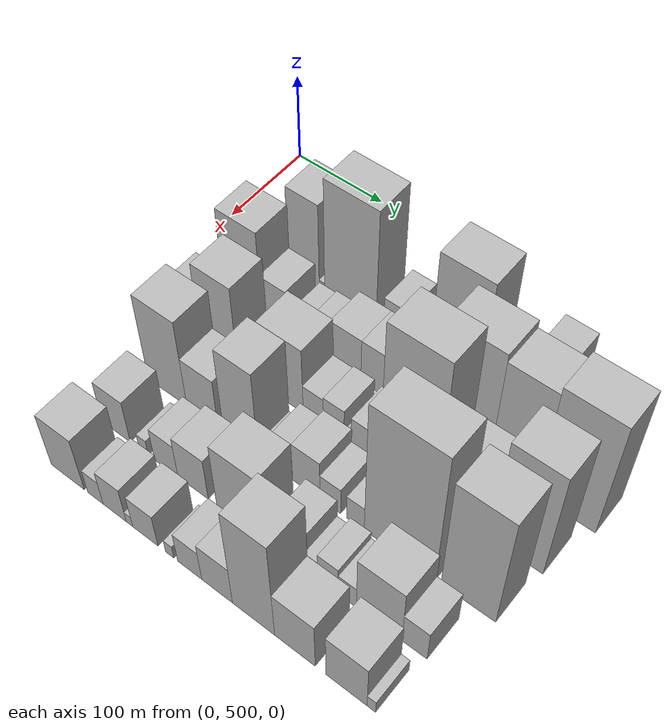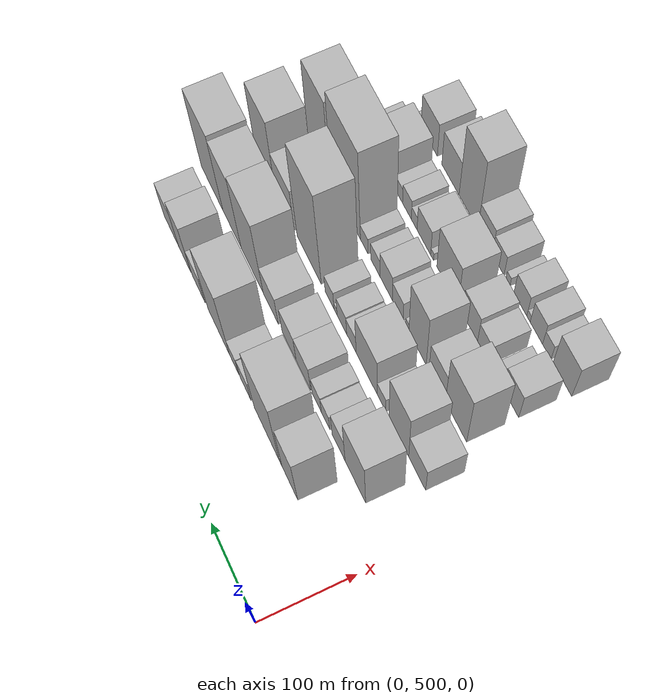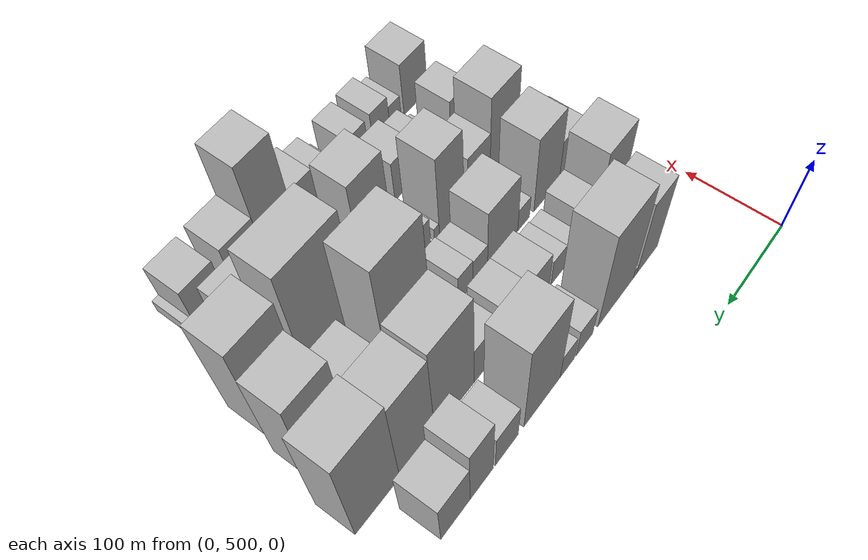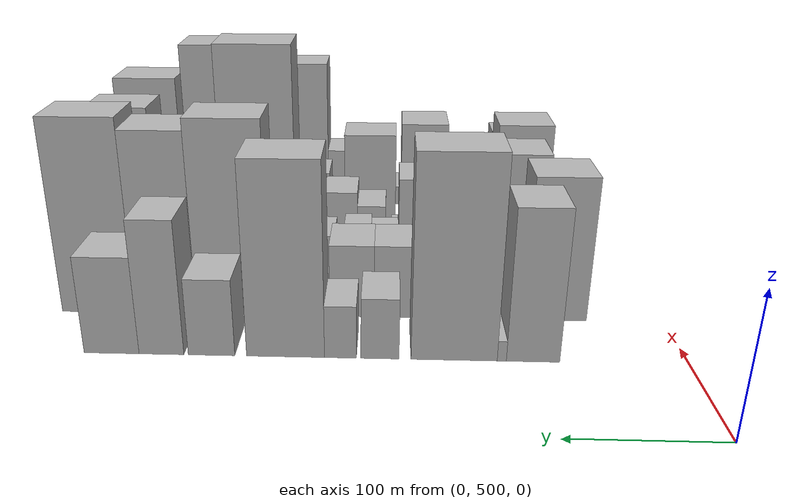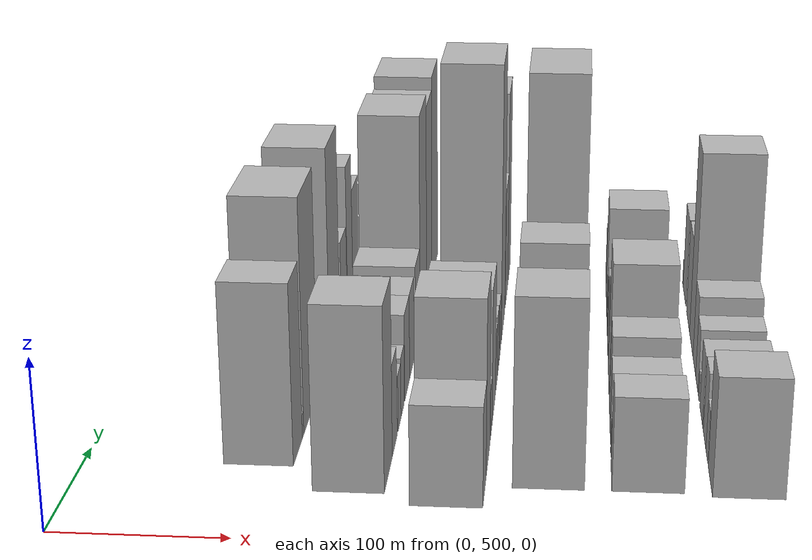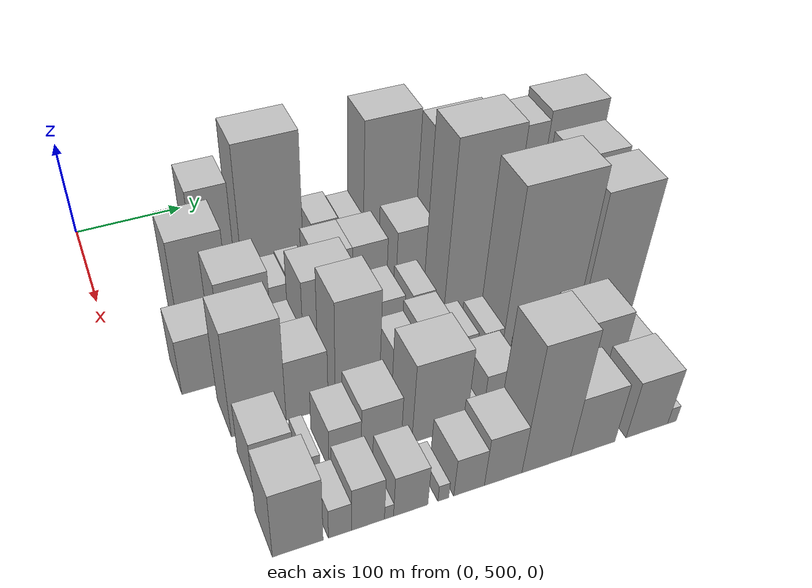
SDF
<sdf version="1.6">
 <world name="default">
  <model name="building_39">
   <static>1</static>
   <pose>100.0000 603.3156 0 0.000000 0.000000 0.000000</pose>
   <link name="link">
    <pose>0 0 55.50 0 0 0</pose>
    <collision name="collision"><geometry><box><size>40.0000 35.3948 111.0000</size></box></geometry></collision>
    <visual name="visual">
     <cast_shadows>0</cast_shadows>
     <geometry><box><size>40.0000 35.3948 111.0000</size></box></geometry>
     <material>
      <script>
       <uri>model://HANNAS_wall/materials/scripts</uri>
       <uri>model://HANNAS_wall/materials/textures</uri>
       <name>vrc/HANNAS_wall</name>
      </script>
     </material>
    </visual>
   </link>
  </model>
  <model name="building_40">
   <static>1</static>
   <pose>100.0000 624.0518 0 0.000000 0.000000 0.000000</pose>
   <link name="link">
    <pose>0 0 7.50 0 0 0</pose>
    <collision name="collision"><geometry><box><size>40.0000 6.0776 15.0000</size></box></geometry></collision>
    <visual name="visual">
     <cast_shadows>0</cast_shadows>
     <geometry><box><size>40.0000 6.0776 15.0000</size></box></geometry>
     <material>
      <script>
       <uri>model://HANNAS_wall/materials/scripts</uri>
       <uri>model://HANNAS_wall/materials/textures</uri>
       <name>vrc/HANNAS_wall</name>
      </script>
     </material>
    </visual>
   </link>
  </model>
  <model name="building_41">
   <static>1</static>
   <pose>100.0000 655.8652 0 0.000000 0.000000 0.000000</pose>
   <link name="link">
    <pose>0 0 73.50 0 0 0</pose>
    <collision name="collision"><geometry><box><size>40.0000 57.5492 147.0000</size></box></geometry></collision>
    <visual name="visual">
     <cast_shadows>0</cast_shadows>
     <geometry><box><size>40.0000 57.5492 147.0000</size></box></geometry>
     <material>
      <script>
       <uri>model://HANNAS_wall/materials/scripts</uri>
       <uri>model://HANNAS_wall/materials/textures</uri>
       <name>vrc/HANNAS_wall</name>
      </script>
     </material>
    </visual>
   </link>
  </model>
  <model name="building_42">
   <static>1</static>
   <pose>100.0000 705.4390 0 0.000000 0.000000 0.000000</pose>
   <link name="link">
    <pose>0 0 22.50 0 0 0</pose>
    <collision name="collision"><geometry><box><size>40.0000 25.5985 45.0000</size></box></geometry></collision>
    <visual name="visual">
     <cast_shadows>0</cast_shadows>
     <geometry><box><size>40.0000 25.5985 45.0000</size></box></geometry>
     <material>
      <script>
       <uri>model://HANNAS_wall/materials/scripts</uri>
       <uri>model://HANNAS_wall/materials/textures</uri>
       <name>vrc/HANNAS_wall</name>
      </script>
     </material>
    </visual>
   </link>
  </model>
  <model name="building_43">
   <static>1</static>
   <pose>100.0000 731.9923 0 0.000000 0.000000 0.000000</pose>
   <link name="link">
    <pose>0 0 19.50 0 0 0</pose>
    <collision name="collision"><geometry><box><size>40.0000 21.5082 39.0000</size></box></geometry></collision>
    <visual name="visual">
     <cast_shadows>0</cast_shadows>
     <geometry><box><size>40.0000 21.5082 39.0000</size></box></geometry>
     <material>
      <script>
       <uri>model://HANNAS_wall/materials/scripts</uri>
       <uri>model://HANNAS_wall/materials/textures</uri>
       <name>vrc/HANNAS_wall</name>
      </script>
     </material>
    </visual>
   </link>
  </model>
  <model name="building_44">
   <static>1</static>
   <pose>100.0000 769.0961 0 0.000000 0.000000 0.000000</pose>
   <link name="link">
    <pose>0 0 70.50 0 0 0</pose>
    <collision name="collision"><geometry><box><size>40.0000 52.6994 141.0000</size></box></geometry></collision>
    <visual name="visual">
     <cast_shadows>0</cast_shadows>
     <geometry><box><size>40.0000 52.6994 141.0000</size></box></geometry>
     <material>
      <script>
       <uri>model://HANNAS_wall/materials/scripts</uri>
       <uri>model://HANNAS_wall/materials/textures</uri>
       <name>vrc/HANNAS_wall</name>
      </script>
     </material>
    </visual>
   </link>
  </model>
  <model name="building_45">
   <static>1</static>
   <pose>100.0000 819.2870 0 0.000000 0.000000 0.000000</pose>
   <link name="link">
    <pose>0 0 28.50 0 0 0</pose>
    <collision name="collision"><geometry><box><size>40.0000 31.6823 57.0000</size></box></geometry></collision>
    <visual name="visual">
     <cast_shadows>0</cast_shadows>
     <geometry><box><size>40.0000 31.6823 57.0000</size></box></geometry>
     <material>
      <script>
       <uri>model://HANNAS_wall/materials/scripts</uri>
       <uri>model://HANNAS_wall/materials/textures</uri>
       <name>vrc/HANNAS_wall</name>
      </script>
     </material>
    </visual>
   </link>
  </model>
  <model name="building_46">
   <static>1</static>
   <pose>100.0000 853.4413 0 0.000000 0.000000 0.000000</pose>
   <link name="link">
    <pose>0 0 49.50 0 0 0</pose>
    <collision name="collision"><geometry><box><size>40.0000 30.6263 99.0000</size></box></geometry></collision>
    <visual name="visual">
     <cast_shadows>0</cast_shadows>
     <geometry><box><size>40.0000 30.6263 99.0000</size></box></geometry>
     <material>
      <script>
       <uri>model://HANNAS_wall/materials/scripts</uri>
       <uri>model://HANNAS_wall/materials/textures</uri>
       <name>vrc/HANNAS_wall</name>
      </script>
     </material>
    </visual>
   </link>
  </model>
  <model name="building_47">
   <static>1</static>
   <pose>100.0000 887.5912 0 0.000000 0.000000 0.000000</pose>
   <link name="link">
    <pose>0 0 36.00 0 0 0</pose>
    <collision name="collision"><geometry><box><size>40.0000 37.6736 72.0000</size></box></geometry></collision>
    <visual name="visual">
     <cast_shadows>0</cast_shadows>
     <geometry><box><size>40.0000 37.6736 72.0000</size></box></geometry>
     <material>
      <script>
       <uri>model://HANNAS_wall/materials/scripts</uri>
       <uri>model://HANNAS_wall/materials/textures</uri>
       <name>vrc/HANNAS_wall</name>
      </script>
     </material>
    </visual>
   </link>
  </model>
  <model name="building_90">
   <static>1</static>
   <pose>155.0000 578.2780 0 0.000000 0.000000 0.000000</pose>
   <link name="link">
    <pose>0 0 55.50 0 0 0</pose>
    <collision name="collision"><geometry><box><size>40.0000 44.3468 111.0000</size></box></geometry></collision>
    <visual name="visual">
     <cast_shadows>0</cast_shadows>
     <geometry><box><size>40.0000 44.3468 111.0000</size></box></geometry>
     <material>
      <script>
       <uri>model://HANNAS_wall/materials/scripts</uri>
       <uri>model://HANNAS_wall/materials/textures</uri>
       <name>vrc/HANNAS_wall</name>
      </script>
     </material>
    </visual>
   </link>
  </model>
  <model name="building_91">
   <static>1</static>
   <pose>155.0000 614.8293 0 0.000000 0.000000 0.000000</pose>
   <link name="link">
    <pose>0 0 28.50 0 0 0</pose>
    <collision name="collision"><geometry><box><size>40.0000 28.7557 57.0000</size></box></geometry></collision>
    <visual name="visual">
     <cast_shadows>0</cast_shadows>
     <geometry><box><size>40.0000 28.7557 57.0000</size></box></geometry>
     <material>
      <script>
       <uri>model://HANNAS_wall/materials/scripts</uri>
       <uri>model://HANNAS_wall/materials/textures</uri>
       <name>vrc/HANNAS_wall</name>
      </script>
     </material>
    </visual>
   </link>
  </model>
  <model name="building_92">
   <static>1</static>
   <pose>155.0000 643.6632 0 0.000000 0.000000 0.000000</pose>
   <link name="link">
    <pose>0 0 18.00 0 0 0</pose>
    <collision name="collision"><geometry><box><size>40.0000 18.9121 36.0000</size></box></geometry></collision>
    <visual name="visual">
     <cast_shadows>0</cast_shadows>
     <geometry><box><size>40.0000 18.9121 36.0000</size></box></geometry>
     <material>
      <script>
       <uri>model://HANNAS_wall/materials/scripts</uri>
       <uri>model://HANNAS_wall/materials/textures</uri>
       <name>vrc/HANNAS_wall</name>
      </script>
     </material>
    </visual>
   </link>
  </model>
  <model name="building_93">
   <static>1</static>
   <pose>155.0000 663.6988 0 0.000000 0.000000 0.000000</pose>
   <link name="link">
    <pose>0 0 19.50 0 0 0</pose>
    <collision name="collision"><geometry><box><size>40.0000 21.1589 39.0000</size></box></geometry></collision>
    <visual name="visual">
     <cast_shadows>0</cast_shadows>
     <geometry><box><size>40.0000 21.1589 39.0000</size></box></geometry>
     <material>
      <script>
       <uri>model://HANNAS_wall/materials/scripts</uri>
       <uri>model://HANNAS_wall/materials/textures</uri>
       <name>vrc/HANNAS_wall</name>
      </script>
     </material>
    </visual>
   </link>
  </model>
  <model name="building_94">
   <static>1</static>
   <pose>155.0000 693.8925 0 0.000000 0.000000 0.000000</pose>
   <link name="link">
    <pose>0 0 28.50 0 0 0</pose>
    <collision name="collision"><geometry><box><size>40.0000 33.2284 57.0000</size></box></geometry></collision>
    <visual name="visual">
     <cast_shadows>0</cast_shadows>
     <geometry><box><size>40.0000 33.2284 57.0000</size></box></geometry>
     <material>
      <script>
       <uri>model://HANNAS_wall/materials/scripts</uri>
       <uri>model://HANNAS_wall/materials/textures</uri>
       <name>vrc/HANNAS_wall</name>
      </script>
     </material>
    </visual>
   </link>
  </model>
  <model name="building_95">
   <static>1</static>
   <pose>155.0000 726.8005 0 0.000000 0.000000 0.000000</pose>
   <link name="link">
    <pose>0 0 28.50 0 0 0</pose>
    <collision name="collision"><geometry><box><size>40.0000 32.5878 57.0000</size></box></geometry></collision>
    <visual name="visual">
     <cast_shadows>0</cast_shadows>
     <geometry><box><size>40.0000 32.5878 57.0000</size></box></geometry>
     <material>
      <script>
       <uri>model://HANNAS_wall/materials/scripts</uri>
       <uri>model://HANNAS_wall/materials/textures</uri>
       <name>vrc/HANNAS_wall</name>
      </script>
     </material>
    </visual>
   </link>
  </model>
  <model name="building_96">
   <static>1</static>
   <pose>155.0000 770.0083 0 0.000000 0.000000 0.000000</pose>
   <link name="link">
    <pose>0 0 30.00 0 0 0</pose>
    <collision name="collision"><geometry><box><size>40.0000 35.8278 60.0000</size></box></geometry></collision>
    <visual name="visual">
     <cast_shadows>0</cast_shadows>
     <geometry><box><size>40.0000 35.8278 60.0000</size></box></geometry>
     <material>
      <script>
       <uri>model://HANNAS_wall/materials/scripts</uri>
       <uri>model://HANNAS_wall/materials/textures</uri>
       <name>vrc/HANNAS_wall</name>
      </script>
     </material>
    </visual>
   </link>
  </model>
  <model name="building_97">
   <static>1</static>
   <pose>155.0000 814.7654 0 0.000000 0.000000 0.000000</pose>
   <link name="link">
    <pose>0 0 75.00 0 0 0</pose>
    <collision name="collision"><geometry><box><size>40.0000 53.6863 150.0000</size></box></geometry></collision>
    <visual name="visual">
     <cast_shadows>0</cast_shadows>
     <geometry><box><size>40.0000 53.6863 150.0000</size></box></geometry>
     <material>
      <script>
       <uri>model://HANNAS_wall/materials/scripts</uri>
       <uri>model://HANNAS_wall/materials/textures</uri>
       <name>vrc/HANNAS_wall</name>
      </script>
     </material>
    </visual>
   </link>
  </model>
  <model name="building_98">
   <static>1</static>
   <pose>155.0000 864.3581 0 0.000000 0.000000 0.000000</pose>
   <link name="link">
    <pose>0 0 70.50 0 0 0</pose>
    <collision name="collision"><geometry><box><size>40.0000 45.4991 141.0000</size></box></geometry></collision>
    <visual name="visual">
     <cast_shadows>0</cast_shadows>
     <geometry><box><size>40.0000 45.4991 141.0000</size></box></geometry>
     <material>
      <script>
       <uri>model://HANNAS_wall/materials/scripts</uri>
       <uri>model://HANNAS_wall/materials/textures</uri>
       <name>vrc/HANNAS_wall</name>
      </script>
     </material>
    </visual>
   </link>
  </model>
  <model name="building_99">
   <static>1</static>
   <pose>155.0000 914.5287 0 0.000000 0.000000 0.000000</pose>
   <link name="link">
    <pose>0 0 75.00 0 0 0</pose>
    <collision name="collision"><geometry><box><size>40.0000 54.8422 150.0000</size></box></geometry></collision>
    <visual name="visual">
     <cast_shadows>0</cast_shadows>
     <geometry><box><size>40.0000 54.8422 150.0000</size></box></geometry>
     <material>
      <script>
       <uri>model://HANNAS_wall/materials/scripts</uri>
       <uri>model://HANNAS_wall/materials/textures</uri>
       <name>vrc/HANNAS_wall</name>
      </script>
     </material>
    </visual>
   </link>
  </model>
  <model name="building_142">
   <static>1</static>
   <pose>210.0000 560.8203 0 0.000000 0.000000 0.000000</pose>
   <link name="link">
    <pose>0 0 30.00 0 0 0</pose>
    <collision name="collision"><geometry><box><size>40.0000 35.3594 60.0000</size></box></geometry></collision>
    <visual name="visual">
     <cast_shadows>0</cast_shadows>
     <geometry><box><size>40.0000 35.3594 60.0000</size></box></geometry>
     <material>
      <script>
       <uri>model://HANNAS_wall/materials/scripts</uri>
       <uri>model://HANNAS_wall/materials/textures</uri>
       <name>vrc/HANNAS_wall</name>
      </script>
     </material>
    </visual>
   </link>
  </model>
  <model name="building_143">
   <static>1</static>
   <pose>210.0000 599.4552 0 0.000000 0.000000 0.000000</pose>
   <link name="link">
    <pose>0 0 54.00 0 0 0</pose>
    <collision name="collision"><geometry><box><size>40.0000 41.9104 108.0000</size></box></geometry></collision>
    <visual name="visual">
     <cast_shadows>0</cast_shadows>
     <geometry><box><size>40.0000 41.9104 108.0000</size></box></geometry>
     <material>
      <script>
       <uri>model://HANNAS_wall/materials/scripts</uri>
       <uri>model://HANNAS_wall/materials/textures</uri>
       <name>vrc/HANNAS_wall</name>
      </script>
     </material>
    </visual>
   </link>
  </model>
  <model name="building_144">
   <static>1</static>
   <pose>210.0000 636.7202 0 0.000000 0.000000 0.000000</pose>
   <link name="link">
    <pose>0 0 16.50 0 0 0</pose>
    <collision name="collision"><geometry><box><size>40.0000 18.6197 33.0000</size></box></geometry></collision>
    <visual name="visual">
     <cast_shadows>0</cast_shadows>
     <geometry><box><size>40.0000 18.6197 33.0000</size></box></geometry>
     <material>
      <script>
       <uri>model://HANNAS_wall/materials/scripts</uri>
       <uri>model://HANNAS_wall/materials/textures</uri>
       <name>vrc/HANNAS_wall</name>
      </script>
     </material>
    </visual>
   </link>
  </model>
  <model name="building_145">
   <static>1</static>
   <pose>210.0000 669.3853 0 0.000000 0.000000 0.000000</pose>
   <link name="link">
    <pose>0 0 43.50 0 0 0</pose>
    <collision name="collision"><geometry><box><size>40.0000 46.7106 87.0000</size></box></geometry></collision>
    <visual name="visual">
     <cast_shadows>0</cast_shadows>
     <geometry><box><size>40.0000 46.7106 87.0000</size></box></geometry>
     <material>
      <script>
       <uri>model://HANNAS_wall/materials/scripts</uri>
       <uri>model://HANNAS_wall/materials/textures</uri>
       <name>vrc/HANNAS_wall</name>
      </script>
     </material>
    </visual>
   </link>
  </model>
  <model name="building_146">
   <static>1</static>
   <pose>210.0000 703.4894 0 0.000000 0.000000 0.000000</pose>
   <link name="link">
    <pose>0 0 19.50 0 0 0</pose>
    <collision name="collision"><geometry><box><size>40.0000 21.4976 39.0000</size></box></geometry></collision>
    <visual name="visual">
     <cast_shadows>0</cast_shadows>
     <geometry><box><size>40.0000 21.4976 39.0000</size></box></geometry>
     <material>
      <script>
       <uri>model://HANNAS_wall/materials/scripts</uri>
       <uri>model://HANNAS_wall/materials/textures</uri>
       <name>vrc/HANNAS_wall</name>
      </script>
     </material>
    </visual>
   </link>
  </model>
  <model name="building_147">
   <static>1</static>
   <pose>210.0000 725.0303 0 0.000000 0.000000 0.000000</pose>
   <link name="link">
    <pose>0 0 21.00 0 0 0</pose>
    <collision name="collision"><geometry><box><size>40.0000 21.5843 42.0000</size></box></geometry></collision>
    <visual name="visual">
     <cast_shadows>0</cast_shadows>
     <geometry><box><size>40.0000 21.5843 42.0000</size></box></geometry>
     <material>
      <script>
       <uri>model://HANNAS_wall/materials/scripts</uri>
       <uri>model://HANNAS_wall/materials/textures</uri>
       <name>vrc/HANNAS_wall</name>
      </script>
     </material>
    </visual>
   </link>
  </model>
  <model name="building_148">
   <static>1</static>
   <pose>210.0000 739.3922 0 0.000000 0.000000 0.000000</pose>
   <link name="link">
    <pose>0 0 7.50 0 0 0</pose>
    <collision name="collision"><geometry><box><size>40.0000 7.1395 15.0000</size></box></geometry></collision>
    <visual name="visual">
     <cast_shadows>0</cast_shadows>
     <geometry><box><size>40.0000 7.1395 15.0000</size></box></geometry>
     <material>
      <script>
       <uri>model://HANNAS_wall/materials/scripts</uri>
       <uri>model://HANNAS_wall/materials/textures</uri>
       <name>vrc/HANNAS_wall</name>
      </script>
     </material>
    </visual>
   </link>
  </model>
  <model name="building_149">
   <static>1</static>
   <pose>210.0000 753.1789 0 0.000000 0.000000 0.000000</pose>
   <link name="link">
    <pose>0 0 19.50 0 0 0</pose>
    <collision name="collision"><geometry><box><size>40.0000 20.4338 39.0000</size></box></geometry></collision>
    <visual name="visual">
     <cast_shadows>0</cast_shadows>
     <geometry><box><size>40.0000 20.4338 39.0000</size></box></geometry>
     <material>
      <script>
       <uri>model://HANNAS_wall/materials/scripts</uri>
       <uri>model://HANNAS_wall/materials/textures</uri>
       <name>vrc/HANNAS_wall</name>
      </script>
     </material>
    </visual>
   </link>
  </model>
  <model name="building_150">
   <static>1</static>
   <pose>210.0000 800.8912 0 0.000000 0.000000 0.000000</pose>
   <link name="link">
    <pose>0 0 94.50 0 0 0</pose>
    <collision name="collision"><geometry><box><size>40.0000 56.9908 189.0000</size></box></geometry></collision>
    <visual name="visual">
     <cast_shadows>0</cast_shadows>
     <geometry><box><size>40.0000 56.9908 189.0000</size></box></geometry>
     <material>
      <script>
       <uri>model://HANNAS_wall/materials/scripts</uri>
       <uri>model://HANNAS_wall/materials/textures</uri>
       <name>vrc/HANNAS_wall</name>
      </script>
     </material>
    </visual>
   </link>
  </model>
  <model name="building_151">
   <static>1</static>
   <pose>210.0000 858.9733 0 0.000000 0.000000 0.000000</pose>
   <link name="link">
    <pose>0 0 42.00 0 0 0</pose>
    <collision name="collision"><geometry><box><size>40.0000 45.1735 84.0000</size></box></geometry></collision>
    <visual name="visual">
     <cast_shadows>0</cast_shadows>
     <geometry><box><size>40.0000 45.1735 84.0000</size></box></geometry>
     <material>
      <script>
       <uri>model://HANNAS_wall/materials/scripts</uri>
       <uri>model://HANNAS_wall/materials/textures</uri>
       <name>vrc/HANNAS_wall</name>
      </script>
     </material>
    </visual>
   </link>
  </model>
  <model name="building_152">
   <static>1</static>
   <pose>210.0000 905.3341 0 0.000000 0.000000 0.000000</pose>
   <link name="link">
    <pose>0 0 70.50 0 0 0</pose>
    <collision name="collision"><geometry><box><size>40.0000 47.5481 141.0000</size></box></geometry></collision>
    <visual name="visual">
     <cast_shadows>0</cast_shadows>
     <geometry><box><size>40.0000 47.5481 141.0000</size></box></geometry>
     <material>
      <script>
       <uri>model://HANNAS_wall/materials/scripts</uri>
       <uri>model://HANNAS_wall/materials/textures</uri>
       <name>vrc/HANNAS_wall</name>
      </script>
     </material>
    </visual>
   </link>
  </model>
  <model name="building_195">
   <static>1</static>
   <pose>265.0000 590.0858 0 0.000000 0.000000 0.000000</pose>
   <link name="link">
    <pose>0 0 57.00 0 0 0</pose>
    <collision name="collision"><geometry><box><size>40.0000 44.2504 114.0000</size></box></geometry></collision>
    <visual name="visual">
     <cast_shadows>0</cast_shadows>
     <geometry><box><size>40.0000 44.2504 114.0000</size></box></geometry>
     <material>
      <script>
       <uri>model://HANNAS_wall/materials/scripts</uri>
       <uri>model://HANNAS_wall/materials/textures</uri>
       <name>vrc/HANNAS_wall</name>
      </script>
     </material>
    </visual>
   </link>
  </model>
  <model name="building_196">
   <static>1</static>
   <pose>265.0000 629.6001 0 0.000000 0.000000 0.000000</pose>
   <link name="link">
    <pose>0 0 33.00 0 0 0</pose>
    <collision name="collision"><geometry><box><size>40.0000 34.7782 66.0000</size></box></geometry></collision>
    <visual name="visual">
     <cast_shadows>0</cast_shadows>
     <geometry><box><size>40.0000 34.7782 66.0000</size></box></geometry>
     <material>
      <script>
       <uri>model://HANNAS_wall/materials/scripts</uri>
       <uri>model://HANNAS_wall/materials/textures</uri>
       <name>vrc/HANNAS_wall</name>
      </script>
     </material>
    </visual>
   </link>
  </model>
  <model name="building_197">
   <static>1</static>
   <pose>265.0000 671.7326 0 0.000000 0.000000 0.000000</pose>
   <link name="link">
    <pose>0 0 57.00 0 0 0</pose>
    <collision name="collision"><geometry><box><size>40.0000 37.4867 114.0000</size></box></geometry></collision>
    <visual name="visual">
     <cast_shadows>0</cast_shadows>
     <geometry><box><size>40.0000 37.4867 114.0000</size></box></geometry>
     <material>
      <script>
       <uri>model://HANNAS_wall/materials/scripts</uri>
       <uri>model://HANNAS_wall/materials/textures</uri>
       <name>vrc/HANNAS_wall</name>
      </script>
     </material>
    </visual>
   </link>
  </model>
  <model name="building_198">
   <static>1</static>
   <pose>265.0000 694.2778 0 0.000000 0.000000 0.000000</pose>
   <link name="link">
    <pose>0 0 9.00 0 0 0</pose>
    <collision name="collision"><geometry><box><size>40.0000 7.6038 18.0000</size></box></geometry></collision>
    <visual name="visual">
     <cast_shadows>0</cast_shadows>
     <geometry><box><size>40.0000 7.6038 18.0000</size></box></geometry>
     <material>
      <script>
       <uri>model://HANNAS_wall/materials/scripts</uri>
       <uri>model://HANNAS_wall/materials/textures</uri>
       <name>vrc/HANNAS_wall</name>
      </script>
     </material>
    </visual>
   </link>
  </model>
  <model name="building_199">
   <static>1</static>
   <pose>265.0000 714.9872 0 0.000000 0.000000 0.000000</pose>
   <link name="link">
    <pose>0 0 21.00 0 0 0</pose>
    <collision name="collision"><geometry><box><size>40.0000 23.8150 42.0000</size></box></geometry></collision>
    <visual name="visual">
     <cast_shadows>0</cast_shadows>
     <geometry><box><size>40.0000 23.8150 42.0000</size></box></geometry>
     <material>
      <script>
       <uri>model://HANNAS_wall/materials/scripts</uri>
       <uri>model://HANNAS_wall/materials/textures</uri>
       <name>vrc/HANNAS_wall</name>
      </script>
     </material>
    </visual>
   </link>
  </model>
  <model name="building_200">
   <static>1</static>
   <pose>265.0000 741.0204 0 0.000000 0.000000 0.000000</pose>
   <link name="link">
    <pose>0 0 27.00 0 0 0</pose>
    <collision name="collision"><geometry><box><size>40.0000 28.2514 54.0000</size></box></geometry></collision>
    <visual name="visual">
     <cast_shadows>0</cast_shadows>
     <geometry><box><size>40.0000 28.2514 54.0000</size></box></geometry>
     <material>
      <script>
       <uri>model://HANNAS_wall/materials/scripts</uri>
       <uri>model://HANNAS_wall/materials/textures</uri>
       <name>vrc/HANNAS_wall</name>
      </script>
     </material>
    </visual>
   </link>
  </model>
  <model name="building_201">
   <static>1</static>
   <pose>265.0000 765.5191 0 0.000000 0.000000 0.000000</pose>
   <link name="link">
    <pose>0 0 18.00 0 0 0</pose>
    <collision name="collision"><geometry><box><size>40.0000 20.7459 36.0000</size></box></geometry></collision>
    <visual name="visual">
     <cast_shadows>0</cast_shadows>
     <geometry><box><size>40.0000 20.7459 36.0000</size></box></geometry>
     <material>
      <script>
       <uri>model://HANNAS_wall/materials/scripts</uri>
       <uri>model://HANNAS_wall/materials/textures</uri>
       <name>vrc/HANNAS_wall</name>
      </script>
     </material>
    </visual>
   </link>
  </model>
  <model name="building_202">
   <static>1</static>
   <pose>265.0000 790.6225 0 0.000000 0.000000 0.000000</pose>
   <link name="link">
    <pose>0 0 16.50 0 0 0</pose>
    <collision name="collision"><geometry><box><size>40.0000 17.4609 33.0000</size></box></geometry></collision>
    <visual name="visual">
     <cast_shadows>0</cast_shadows>
     <geometry><box><size>40.0000 17.4609 33.0000</size></box></geometry>
     <material>
      <script>
       <uri>model://HANNAS_wall/materials/scripts</uri>
       <uri>model://HANNAS_wall/materials/textures</uri>
       <name>vrc/HANNAS_wall</name>
      </script>
     </material>
    </visual>
   </link>
  </model>
  <model name="building_203">
   <static>1</static>
   <pose>265.0000 833.5641 0 0.000000 0.000000 0.000000</pose>
   <link name="link">
    <pose>0 0 88.50 0 0 0</pose>
    <collision name="collision"><geometry><box><size>40.0000 68.4224 177.0000</size></box></geometry></collision>
    <visual name="visual">
     <cast_shadows>0</cast_shadows>
     <geometry><box><size>40.0000 68.4224 177.0000</size></box></geometry>
     <material>
      <script>
       <uri>model://HANNAS_wall/materials/scripts</uri>
       <uri>model://HANNAS_wall/materials/textures</uri>
       <name>vrc/HANNAS_wall</name>
      </script>
     </material>
    </visual>
   </link>
  </model>
  <model name="building_204">
   <static>1</static>
   <pose>265.0000 897.8986 0 0.000000 0.000000 0.000000</pose>
   <link name="link">
    <pose>0 0 75.00 0 0 0</pose>
    <collision name="collision"><geometry><box><size>40.0000 50.2466 150.0000</size></box></geometry></collision>
    <visual name="visual">
     <cast_shadows>0</cast_shadows>
     <geometry><box><size>40.0000 50.2466 150.0000</size></box></geometry>
     <material>
      <script>
       <uri>model://HANNAS_wall/materials/scripts</uri>
       <uri>model://HANNAS_wall/materials/textures</uri>
       <name>vrc/HANNAS_wall</name>
      </script>
     </material>
    </visual>
   </link>
  </model>
  <model name="building_250">
   <static>1</static>
   <pose>320.0000 583.9938 0 0.000000 0.000000 0.000000</pose>
   <link name="link">
    <pose>0 0 28.50 0 0 0</pose>
    <collision name="collision"><geometry><box><size>40.0000 31.9137 57.0000</size></box></geometry></collision>
    <visual name="visual">
     <cast_shadows>0</cast_shadows>
     <geometry><box><size>40.0000 31.9137 57.0000</size></box></geometry>
     <material>
      <script>
       <uri>model://HANNAS_wall/materials/scripts</uri>
       <uri>model://HANNAS_wall/materials/textures</uri>
       <name>vrc/HANNAS_wall</name>
      </script>
     </material>
    </visual>
   </link>
  </model>
  <model name="building_251">
   <static>1</static>
   <pose>320.0000 615.0752 0 0.000000 0.000000 0.000000</pose>
   <link name="link">
    <pose>0 0 10.50 0 0 0</pose>
    <collision name="collision"><geometry><box><size>40.0000 10.2492 21.0000</size></box></geometry></collision>
    <visual name="visual">
     <cast_shadows>0</cast_shadows>
     <geometry><box><size>40.0000 10.2492 21.0000</size></box></geometry>
     <material>
      <script>
       <uri>model://HANNAS_wall/materials/scripts</uri>
       <uri>model://HANNAS_wall/materials/textures</uri>
       <name>vrc/HANNAS_wall</name>
      </script>
     </material>
    </visual>
   </link>
  </model>
  <model name="building_252">
   <static>1</static>
   <pose>320.0000 640.0425 0 0.000000 0.000000 0.000000</pose>
   <link name="link">
    <pose>0 0 22.50 0 0 0</pose>
    <collision name="collision"><geometry><box><size>40.0000 25.6854 45.0000</size></box></geometry></collision>
    <visual name="visual">
     <cast_shadows>0</cast_shadows>
     <geometry><box><size>40.0000 25.6854 45.0000</size></box></geometry>
     <material>
      <script>
       <uri>model://HANNAS_wall/materials/scripts</uri>
       <uri>model://HANNAS_wall/materials/textures</uri>
       <name>vrc/HANNAS_wall</name>
      </script>
     </material>
    </visual>
   </link>
  </model>
  <model name="building_253">
   <static>1</static>
   <pose>320.0000 669.1978 0 0.000000 0.000000 0.000000</pose>
   <link name="link">
    <pose>0 0 28.50 0 0 0</pose>
    <collision name="collision"><geometry><box><size>40.0000 32.6252 57.0000</size></box></geometry></collision>
    <visual name="visual">
     <cast_shadows>0</cast_shadows>
     <geometry><box><size>40.0000 32.6252 57.0000</size></box></geometry>
     <material>
      <script>
       <uri>model://HANNAS_wall/materials/scripts</uri>
       <uri>model://HANNAS_wall/materials/textures</uri>
       <name>vrc/HANNAS_wall</name>
      </script>
     </material>
    </visual>
   </link>
  </model>
  <model name="building_254">
   <static>1</static>
   <pose>320.0000 717.5066 0 0.000000 0.000000 0.000000</pose>
   <link name="link">
    <pose>0 0 43.50 0 0 0</pose>
    <collision name="collision"><geometry><box><size>40.0000 45.9923 87.0000</size></box></geometry></collision>
    <visual name="visual">
     <cast_shadows>0</cast_shadows>
     <geometry><box><size>40.0000 45.9923 87.0000</size></box></geometry>
     <material>
      <script>
       <uri>model://HANNAS_wall/materials/scripts</uri>
       <uri>model://HANNAS_wall/materials/textures</uri>
       <name>vrc/HANNAS_wall</name>
      </script>
     </material>
    </visual>
   </link>
  </model>
  <model name="building_255">
   <static>1</static>
   <pose>320.0000 750.8349 0 0.000000 0.000000 0.000000</pose>
   <link name="link">
    <pose>0 0 7.50 0 0 0</pose>
    <collision name="collision"><geometry><box><size>40.0000 6.6642 15.0000</size></box></geometry></collision>
    <visual name="visual">
     <cast_shadows>0</cast_shadows>
     <geometry><box><size>40.0000 6.6642 15.0000</size></box></geometry>
     <material>
      <script>
       <uri>model://HANNAS_wall/materials/scripts</uri>
       <uri>model://HANNAS_wall/materials/textures</uri>
       <name>vrc/HANNAS_wall</name>
      </script>
     </material>
    </visual>
   </link>
  </model>
  <model name="building_256">
   <static>1</static>
   <pose>320.0000 769.2513 0 0.000000 0.000000 0.000000</pose>
   <link name="link">
    <pose>0 0 25.50 0 0 0</pose>
    <collision name="collision"><geometry><box><size>40.0000 30.1686 51.0000</size></box></geometry></collision>
    <visual name="visual">
     <cast_shadows>0</cast_shadows>
     <geometry><box><size>40.0000 30.1686 51.0000</size></box></geometry>
     <material>
      <script>
       <uri>model://HANNAS_wall/materials/scripts</uri>
       <uri>model://HANNAS_wall/materials/textures</uri>
       <name>vrc/HANNAS_wall</name>
      </script>
     </material>
    </visual>
   </link>
  </model>
  <model name="building_257">
   <static>1</static>
   <pose>320.0000 790.8054 0 0.000000 0.000000 0.000000</pose>
   <link name="link">
    <pose>0 0 13.50 0 0 0</pose>
    <collision name="collision"><geometry><box><size>40.0000 12.9395 27.0000</size></box></geometry></collision>
    <visual name="visual">
     <cast_shadows>0</cast_shadows>
     <geometry><box><size>40.0000 12.9395 27.0000</size></box></geometry>
     <material>
      <script>
       <uri>model://HANNAS_wall/materials/scripts</uri>
       <uri>model://HANNAS_wall/materials/textures</uri>
       <name>vrc/HANNAS_wall</name>
      </script>
     </material>
    </visual>
   </link>
  </model>
  <model name="building_258">
   <static>1</static>
   <pose>320.0000 807.1747 0 0.000000 0.000000 0.000000</pose>
   <link name="link">
    <pose>0 0 19.50 0 0 0</pose>
    <collision name="collision"><geometry><box><size>40.0000 19.7991 39.0000</size></box></geometry></collision>
    <visual name="visual">
     <cast_shadows>0</cast_shadows>
     <geometry><box><size>40.0000 19.7991 39.0000</size></box></geometry>
     <material>
      <script>
       <uri>model://HANNAS_wall/materials/scripts</uri>
       <uri>model://HANNAS_wall/materials/textures</uri>
       <name>vrc/HANNAS_wall</name>
      </script>
     </material>
    </visual>
   </link>
  </model>
  <model name="building_259">
   <static>1</static>
   <pose>320.0000 825.6971 0 0.000000 0.000000 0.000000</pose>
   <link name="link">
    <pose>0 0 15.00 0 0 0</pose>
    <collision name="collision"><geometry><box><size>40.0000 17.2458 30.0000</size></box></geometry></collision>
    <visual name="visual">
     <cast_shadows>0</cast_shadows>
     <geometry><box><size>40.0000 17.2458 30.0000</size></box></geometry>
     <material>
      <script>
       <uri>model://HANNAS_wall/materials/scripts</uri>
       <uri>model://HANNAS_wall/materials/textures</uri>
       <name>vrc/HANNAS_wall</name>
      </script>
     </material>
    </visual>
   </link>
  </model>
  <model name="building_260">
   <static>1</static>
   <pose>320.0000 855.6733 0 0.000000 0.000000 0.000000</pose>
   <link name="link">
    <pose>0 0 37.50 0 0 0</pose>
    <collision name="collision"><geometry><box><size>40.0000 42.7066 75.0000</size></box></geometry></collision>
    <visual name="visual">
     <cast_shadows>0</cast_shadows>
     <geometry><box><size>40.0000 42.7066 75.0000</size></box></geometry>
     <material>
      <script>
       <uri>model://HANNAS_wall/materials/scripts</uri>
       <uri>model://HANNAS_wall/materials/textures</uri>
       <name>vrc/HANNAS_wall</name>
      </script>
     </material>
    </visual>
   </link>
  </model>
  <model name="building_261">
   <static>1</static>
   <pose>320.0000 888.4973 0 0.000000 0.000000 0.000000</pose>
   <link name="link">
    <pose>0 0 21.00 0 0 0</pose>
    <collision name="collision"><geometry><box><size>40.0000 22.9415 42.0000</size></box></geometry></collision>
    <visual name="visual">
     <cast_shadows>0</cast_shadows>
     <geometry><box><size>40.0000 22.9415 42.0000</size></box></geometry>
     <material>
      <script>
       <uri>model://HANNAS_wall/materials/scripts</uri>
       <uri>model://HANNAS_wall/materials/textures</uri>
       <name>vrc/HANNAS_wall</name>
      </script>
     </material>
    </visual>
   </link>
  </model>
  <model name="building_305">
   <static>1</static>
   <pose>375.0000 583.5968 0 0.000000 0.000000 0.000000</pose>
   <link name="link">
    <pose>0 0 36.00 0 0 0</pose>
    <collision name="collision"><geometry><box><size>40.0000 37.3683 72.0000</size></box></geometry></collision>
    <visual name="visual">
     <cast_shadows>0</cast_shadows>
     <geometry><box><size>40.0000 37.3683 72.0000</size></box></geometry>
     <material>
      <script>
       <uri>model://HANNAS_wall/materials/scripts</uri>
       <uri>model://HANNAS_wall/materials/textures</uri>
       <name>vrc/HANNAS_wall</name>
      </script>
     </material>
    </visual>
   </link>
  </model>
  <model name="building_306">
   <static>1</static>
   <pose>375.0000 614.8738 0 0.000000 0.000000 0.000000</pose>
   <link name="link">
    <pose>0 0 16.50 0 0 0</pose>
    <collision name="collision"><geometry><box><size>40.0000 17.1857 33.0000</size></box></geometry></collision>
    <visual name="visual">
     <cast_shadows>0</cast_shadows>
     <geometry><box><size>40.0000 17.1857 33.0000</size></box></geometry>
     <material>
      <script>
       <uri>model://HANNAS_wall/materials/scripts</uri>
       <uri>model://HANNAS_wall/materials/textures</uri>
       <name>vrc/HANNAS_wall</name>
      </script>
     </material>
    </visual>
   </link>
  </model>
  <model name="building_307">
   <static>1</static>
   <pose>375.0000 636.1410 0 0.000000 0.000000 0.000000</pose>
   <link name="link">
    <pose>0 0 24.00 0 0 0</pose>
    <collision name="collision"><geometry><box><size>40.0000 25.3485 48.0000</size></box></geometry></collision>
    <visual name="visual">
     <cast_shadows>0</cast_shadows>
     <geometry><box><size>40.0000 25.3485 48.0000</size></box></geometry>
     <material>
      <script>
       <uri>model://HANNAS_wall/materials/scripts</uri>
       <uri>model://HANNAS_wall/materials/textures</uri>
       <name>vrc/HANNAS_wall</name>
      </script>
     </material>
    </visual>
   </link>
  </model>
  <model name="building_308">
   <static>1</static>
   <pose>375.0000 652.3437 0 0.000000 0.000000 0.000000</pose>
   <link name="link">
    <pose>0 0 7.50 0 0 0</pose>
    <collision name="collision"><geometry><box><size>40.0000 7.0569 15.0000</size></box></geometry></collision>
    <visual name="visual">
     <cast_shadows>0</cast_shadows>
     <geometry><box><size>40.0000 7.0569 15.0000</size></box></geometry>
     <material>
      <script>
       <uri>model://HANNAS_wall/materials/scripts</uri>
       <uri>model://HANNAS_wall/materials/textures</uri>
       <name>vrc/HANNAS_wall</name>
      </script>
     </material>
    </visual>
   </link>
  </model>
  <model name="building_309">
   <static>1</static>
   <pose>375.0000 669.3397 0 0.000000 0.000000 0.000000</pose>
   <link name="link">
    <pose>0 0 22.50 0 0 0</pose>
    <collision name="collision"><geometry><box><size>40.0000 26.9351 45.0000</size></box></geometry></collision>
    <visual name="visual">
     <cast_shadows>0</cast_shadows>
     <geometry><box><size>40.0000 26.9351 45.0000</size></box></geometry>
     <material>
      <script>
       <uri>model://HANNAS_wall/materials/scripts</uri>
       <uri>model://HANNAS_wall/materials/textures</uri>
       <name>vrc/HANNAS_wall</name>
      </script>
     </material>
    </visual>
   </link>
  </model>
  <model name="building_310">
   <static>1</static>
   <pose>375.0000 695.1276 0 0.000000 0.000000 0.000000</pose>
   <link name="link">
    <pose>0 0 9.00 0 0 0</pose>
    <collision name="collision"><geometry><box><size>40.0000 8.6407 18.0000</size></box></geometry></collision>
    <visual name="visual">
     <cast_shadows>0</cast_shadows>
     <geometry><box><size>40.0000 8.6407 18.0000</size></box></geometry>
     <material>
      <script>
       <uri>model://HANNAS_wall/materials/scripts</uri>
       <uri>model://HANNAS_wall/materials/textures</uri>
       <name>vrc/HANNAS_wall</name>
      </script>
     </material>
    </visual>
   </link>
  </model>
  <model name="building_311">
   <static>1</static>
   <pose>375.0000 715.8758 0 0.000000 0.000000 0.000000</pose>
   <link name="link">
    <pose>0 0 21.00 0 0 0</pose>
    <collision name="collision"><geometry><box><size>40.0000 24.8556 42.0000</size></box></geometry></collision>
    <visual name="visual">
     <cast_shadows>0</cast_shadows>
     <geometry><box><size>40.0000 24.8556 42.0000</size></box></geometry>
     <material>
      <script>
       <uri>model://HANNAS_wall/materials/scripts</uri>
       <uri>model://HANNAS_wall/materials/textures</uri>
       <name>vrc/HANNAS_wall</name>
      </script>
     </material>
    </visual>
   </link>
  </model>
  <model name="building_312">
   <static>1</static>
   <pose>375.0000 743.8085 0 0.000000 0.000000 0.000000</pose>
   <link name="link">
    <pose>0 0 27.00 0 0 0</pose>
    <collision name="collision"><geometry><box><size>40.0000 31.0097 54.0000</size></box></geometry></collision>
    <visual name="visual">
     <cast_shadows>0</cast_shadows>
     <geometry><box><size>40.0000 31.0097 54.0000</size></box></geometry>
     <material>
      <script>
       <uri>model://HANNAS_wall/materials/scripts</uri>
       <uri>model://HANNAS_wall/materials/textures</uri>
       <name>vrc/HANNAS_wall</name>
      </script>
     </material>
    </visual>
   </link>
  </model>
  <model name="building_313">
   <static>1</static>
   <pose>375.0000 780.0439 0 0.000000 0.000000 0.000000</pose>
   <link name="link">
    <pose>0 0 69.00 0 0 0</pose>
    <collision name="collision"><geometry><box><size>40.0000 41.4612 138.0000</size></box></geometry></collision>
    <visual name="visual">
     <cast_shadows>0</cast_shadows>
     <geometry><box><size>40.0000 41.4612 138.0000</size></box></geometry>
     <material>
      <script>
       <uri>model://HANNAS_wall/materials/scripts</uri>
       <uri>model://HANNAS_wall/materials/textures</uri>
       <name>vrc/HANNAS_wall</name>
      </script>
     </material>
    </visual>
   </link>
  </model>
  <model name="building_314">
   <static>1</static>
   <pose>375.0000 820.0756 0 0.000000 0.000000 0.000000</pose>
   <link name="link">
    <pose>0 0 33.00 0 0 0</pose>
    <collision name="collision"><geometry><box><size>40.0000 38.6021 66.0000</size></box></geometry></collision>
    <visual name="visual">
     <cast_shadows>0</cast_shadows>
     <geometry><box><size>40.0000 38.6021 66.0000</size></box></geometry>
     <material>
      <script>
       <uri>model://HANNAS_wall/materials/scripts</uri>
       <uri>model://HANNAS_wall/materials/textures</uri>
       <name>vrc/HANNAS_wall</name>
      </script>
     </material>
    </visual>
   </link>
  </model>
  <model name="building_315">
   <static>1</static>
   <pose>375.0000 868.1204 0 0.000000 0.000000 0.000000</pose>
   <link name="link">
    <pose>0 0 31.50 0 0 0</pose>
    <collision name="collision"><geometry><box><size>40.0000 37.4875 63.0000</size></box></geometry></collision>
    <visual name="visual">
     <cast_shadows>0</cast_shadows>
     <geometry><box><size>40.0000 37.4875 63.0000</size></box></geometry>
     <material>
      <script>
       <uri>model://HANNAS_wall/materials/scripts</uri>
       <uri>model://HANNAS_wall/materials/textures</uri>
       <name>vrc/HANNAS_wall</name>
      </script>
     </material>
    </visual>
   </link>
  </model>
  <model name="building_316">
   <static>1</static>
   <pose>375.0000 890.7725 0 0.000000 0.000000 0.000000</pose>
   <link name="link">
    <pose>0 0 9.00 0 0 0</pose>
    <collision name="collision"><geometry><box><size>40.0000 7.8166 18.0000</size></box></geometry></collision>
    <visual name="visual">
     <cast_shadows>0</cast_shadows>
     <geometry><box><size>40.0000 7.8166 18.0000</size></box></geometry>
     <material>
      <script>
       <uri>model://HANNAS_wall/materials/scripts</uri>
       <uri>model://HANNAS_wall/materials/textures</uri>
       <name>vrc/HANNAS_wall</name>
      </script>
     </material>
    </visual>
   </link>
  </model>
 </world>
</sdf>
